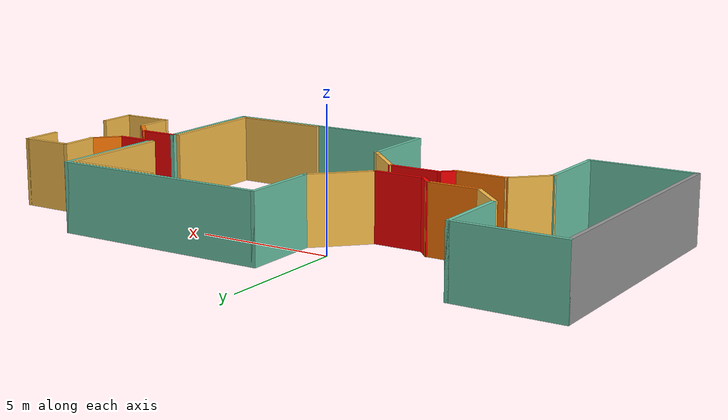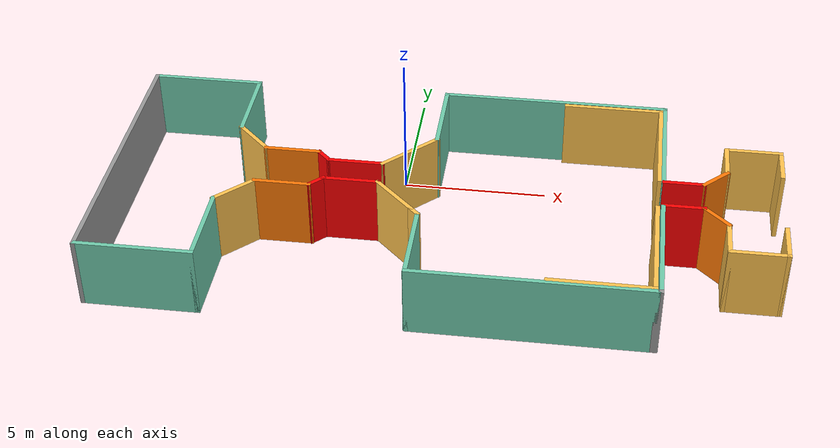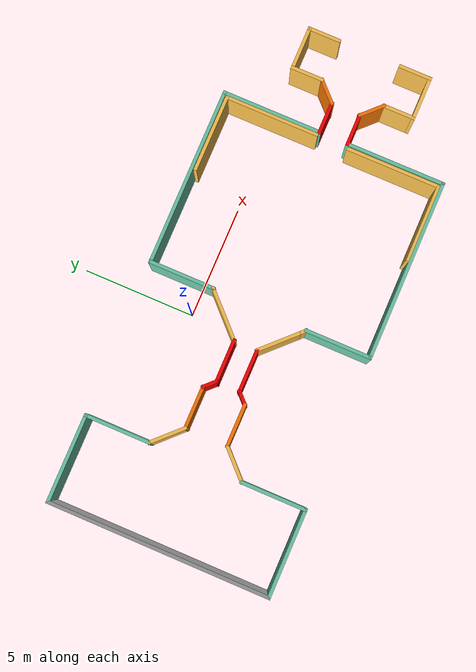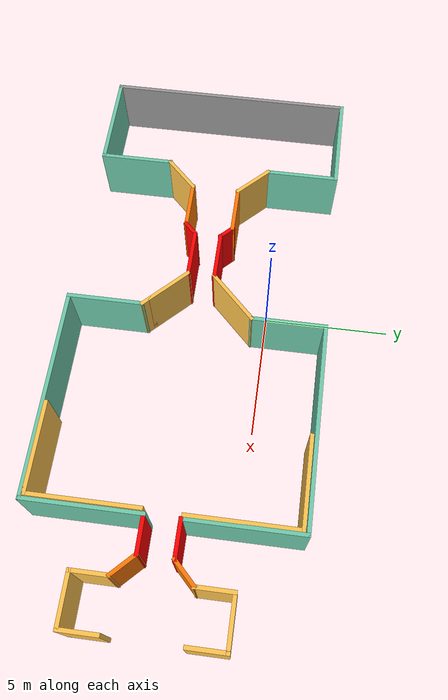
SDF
<?xml version='1.0'?>
<sdf version='1.6'>
  <model name='exp1.sdf'>
    <pose frame=''>1.73143 -2.6637 0 0 -0 0</pose>
    <link name='Wall_1'>
      <collision name='Wall_1_Collision'>
        <geometry>
          <box>
            <size>10 0.15 2.5</size>
          </box>
        </geometry>
        <pose frame=''>0 0 1.25 0 -0 0</pose>
      </collision>
      <visual name='Wall_1_Visual'>
        <pose frame=''>0 0 1.25 0 -0 0</pose>
        <geometry>
          <box>
            <size>10 0.15 2.5</size>
          </box>
        </geometry>
        <material>
          <script>
            <uri>file://media/materials/scripts/gazebo.material</uri>
            <name>Gazebo/Grey</name>
          </script>
          <ambient>1 1 1 1</ambient>
        </material>
        <meta>
          <layer>0</layer>
        </meta>
      </visual>
      <pose frame=''>-11.2976 -0.037824 0 0 0 -1.5708</pose>
    </link>
    <link name='Wall_10'>
      <collision name='Wall_10_Collision'>
        <geometry>
          <box>
            <size>3.03042 0.15 2.5</size>
          </box>
        </geometry>
        <pose frame=''>0 0 1.25 0 -0 0</pose>
      </collision>
      <visual name='Wall_10_Visual'>
        <pose frame=''>0 0 1.25 0 -0 0</pose>
        <geometry>
          <box>
            <size>3.03042 0.15 2.5</size>
          </box>
        </geometry>
        <material>
          <script>
            <uri>file://media/materials/scripts/gazebo.material</uri>
            <name>Gazebo/Grey</name>
          </script>
          <ambient>0.435294 0.796078 0.67451 1</ambient>
        </material>
        <meta>
          <layer>0</layer>
        </meta>
      </visual>
      <pose frame=''>-0.636307 -3.55303 0 0 0 -1.5708</pose>
    </link>
    <link name='Wall_12'>
      <collision name='Wall_12_Collision'>
        <geometry>
          <box>
            <size>4 0.15 2.5</size>
          </box>
        </geometry>
        <pose frame=''>0 0 1.25 0 -0 0</pose>
      </collision>
      <visual name='Wall_12_Visual'>
        <pose frame=''>0 0 1.25 0 -0 0</pose>
        <geometry>
          <box>
            <size>4 0.15 2.5</size>
          </box>
        </geometry>
        <material>
          <script>
            <uri>file://media/materials/scripts/gazebo.material</uri>
            <name>Gazebo/Grey</name>
          </script>
          <ambient>0.435294 0.796078 0.67451 1</ambient>
        </material>
        <meta>
          <layer>0</layer>
        </meta>
      </visual>
      <pose frame=''>-9.37258 4.88718 0 0 -0 0</pose>
    </link>
    <link name='Wall_13'>
      <collision name='Wall_13_Collision'>
        <geometry>
          <box>
            <size>3 0.15 2.5</size>
          </box>
        </geometry>
        <pose frame=''>0 0 1.25 0 -0 0</pose>
      </collision>
      <visual name='Wall_13_Visual'>
        <pose frame=''>0 0 1.25 0 -0 0</pose>
        <geometry>
          <box>
            <size>3 0.15 2.5</size>
          </box>
        </geometry>
        <material>
          <script>
            <uri>file://media/materials/scripts/gazebo.material</uri>
            <name>Gazebo/Grey</name>
          </script>
          <ambient>0.435294 0.796078 0.67451 1</ambient>
        </material>
        <meta>
          <layer>0</layer>
        </meta>
      </visual>
      <pose frame=''>-7.44758 3.46218 0 0 0 -1.5708</pose>
    </link>
    <link name='Wall_14'>
      <collision name='Wall_14_Collision'>
        <geometry>
          <box>
            <size>1.75 0.15 2.5</size>
          </box>
        </geometry>
        <pose frame=''>0 0 1.25 0 -0 0</pose>
      </collision>
      <visual name='Wall_14_Visual'>
        <pose frame=''>0 0 1.25 0 -0 0</pose>
        <geometry>
          <box>
            <size>1.75 0.15 2.5</size>
          </box>
        </geometry>
        <material>
          <script>
            <uri>file://media/materials/scripts/gazebo.material</uri>
            <name>Gazebo/Grey</name>
          </script>
          <ambient>1 0.764706 0.305882 1</ambient>
        </material>
        <meta>
          <layer>0</layer>
        </meta>
      </visual>
      <pose frame=''>-6.88189 1.47149 0 0 0 -0.785398</pose>
    </link>
    <link name='Wall_15'>
      <collision name='Wall_15_Collision'>
        <geometry>
          <box>
            <size>2 0.15 2.5</size>
          </box>
        </geometry>
        <pose frame=''>0 0 1.25 0 -0 0</pose>
      </collision>
      <visual name='Wall_15_Visual'>
        <pose frame=''>0 0 1.25 0 -0 0</pose>
        <geometry>
          <box>
            <size>2 0.15 2.5</size>
          </box>
        </geometry>
        <material>
          <script>
            <uri>file://media/materials/scripts/gazebo.material</uri>
            <name>Gazebo/Grey</name>
          </script>
          <ambient>0.996078 0.47451 0.0196078 1</ambient>
        </material>
        <meta>
          <layer>0</layer>
        </meta>
      </visual>
      <pose frame=''>-5.39121 0.905805 0 0 -0 0</pose>
    </link>
    <link name='Wall_16'>
      <collision name='Wall_16_Collision'>
        <geometry>
          <box>
            <size>0.75 0.15 2.5</size>
          </box>
        </geometry>
        <pose frame=''>0 0 1.25 0 -0 0</pose>
      </collision>
      <visual name='Wall_16_Visual'>
        <pose frame=''>0 0 1.25 0 -0 0</pose>
        <geometry>
          <box>
            <size>0.75 0.15 2.5</size>
          </box>
        </geometry>
        <material>
          <script>
            <uri>file://media/materials/scripts/gazebo.material</uri>
            <name>Gazebo/Grey</name>
          </script>
          <ambient>1 0 0 1</ambient>
        </material>
        <meta>
          <layer>0</layer>
        </meta>
      </visual>
      <pose frame=''>-4.25407 0.693673 0 0 0 -0.785398</pose>
    </link>
    <link name='Wall_17'>
      <collision name='Wall_17_Collision'>
        <geometry>
          <box>
            <size>2 0.15 2.5</size>
          </box>
        </geometry>
        <pose frame=''>0 0 1.25 0 -0 0</pose>
      </collision>
      <visual name='Wall_17_Visual'>
        <pose frame=''>0 0 1.25 0 -0 0</pose>
        <geometry>
          <box>
            <size>2 0.15 2.5</size>
          </box>
        </geometry>
        <material>
          <script>
            <uri>file://media/materials/scripts/gazebo.material</uri>
            <name>Gazebo/Grey</name>
          </script>
          <ambient>1 0 0 1</ambient>
        </material>
        <meta>
          <layer>0</layer>
        </meta>
      </visual>
      <pose frame=''>-3.11694 0.481541 0 0 -0 0</pose>
    </link>
    <link name='Wall_2'>
      <collision name='Wall_2_Collision'>
        <geometry>
          <box>
            <size>4 0.15 2.5</size>
          </box>
        </geometry>
        <pose frame=''>0 0 1.25 0 -0 0</pose>
      </collision>
      <visual name='Wall_2_Visual'>
        <pose frame=''>0 0 1.25 0 -0 0</pose>
        <geometry>
          <box>
            <size>4 0.15 2.5</size>
          </box>
        </geometry>
        <material>
          <script>
            <uri>file://media/materials/scripts/gazebo.material</uri>
            <name>Gazebo/Grey</name>
          </script>
          <ambient>0.435294 0.796078 0.67451 1</ambient>
        </material>
        <meta>
          <layer>0</layer>
        </meta>
      </visual>
      <pose frame=''>-9.37258 -4.96282 0 0 -0 0</pose>
    </link>
    <link name='Wall_20'>
      <collision name='Wall_20_Collision'>
        <geometry>
          <box>
            <size>2.5 0.15 2.5</size>
          </box>
        </geometry>
        <pose frame=''>0 0 1.25 0 -0 0</pose>
      </collision>
      <visual name='Wall_20_Visual'>
        <pose frame=''>0 0 1.25 0 -0 0</pose>
        <geometry>
          <box>
            <size>2.5 0.15 2.5</size>
          </box>
        </geometry>
        <material>
          <script>
            <uri>file://media/materials/scripts/gazebo.material</uri>
            <name>Gazebo/Grey</name>
          </script>
          <ambient>1 0.764706 0.305882 1</ambient>
        </material>
        <meta>
          <layer>0</layer>
        </meta>
      </visual>
      <pose frame=''>-1.36109 1.31239 0 0 -0 0.785398</pose>
    </link>
    <link name='Wall_21'>
      <collision name='Wall_21_Collision'>
        <geometry>
          <box>
            <size>3 0.15 2.5</size>
          </box>
        </geometry>
        <pose frame=''>0 0 1.25 0 -0 0</pose>
      </collision>
      <visual name='Wall_21_Visual'>
        <pose frame=''>0 0 1.25 0 -0 0</pose>
        <geometry>
          <box>
            <size>3 0.15 2.5</size>
          </box>
        </geometry>
        <material>
          <script>
            <uri>file://media/materials/scripts/gazebo.material</uri>
            <name>Gazebo/Grey</name>
          </script>
          <ambient>0.435294 0.796078 0.67451 1</ambient>
        </material>
        <meta>
          <layer>0</layer>
        </meta>
      </visual>
      <pose frame=''>-0.53024 3.56824 0 0 -0 1.5708</pose>
    </link>
    <link name='Wall_22'>
      <collision name='Wall_22_Collision'>
        <geometry>
          <box>
            <size>8 0.15 2.5</size>
          </box>
        </geometry>
        <pose frame=''>0 0 1.25 0 -0 0</pose>
      </collision>
      <visual name='Wall_22_Visual'>
        <pose frame=''>0 0 1.25 0 -0 0</pose>
        <geometry>
          <box>
            <size>8 0.15 2.5</size>
          </box>
        </geometry>
        <material>
          <script>
            <uri>file://media/materials/scripts/gazebo.material</uri>
            <name>Gazebo/Grey</name>
          </script>
          <ambient>0.435294 0.796078 0.67451 1</ambient>
        </material>
        <meta>
          <layer>0</layer>
        </meta>
      </visual>
      <pose frame=''>3.39476 4.99324 0 0 -0 0</pose>
    </link>
    <link name='Wall_23'>
      <collision name='Wall_23_Collision'>
        <geometry>
          <box>
            <size>4.5 0.15 2.5</size>
          </box>
        </geometry>
        <pose frame=''>0 0 1.25 0 -0 0</pose>
      </collision>
      <visual name='Wall_23_Visual'>
        <pose frame=''>0 0 1.25 0 -0 0</pose>
        <geometry>
          <box>
            <size>4.5 0.15 2.5</size>
          </box>
        </geometry>
        <material>
          <script>
            <uri>file://media/materials/scripts/gazebo.material</uri>
            <name>Gazebo/Grey</name>
          </script>
          <ambient>0.435294 0.796078 0.67451 1</ambient>
        </material>
        <meta>
          <layer>0</layer>
        </meta>
      </visual>
      <pose frame=''>7.31976 2.81824 0 0 0 -1.5708</pose>
    </link>
    <link name='Wall_24'>
      <collision name='Wall_24_Collision'>
        <geometry>
          <box>
            <size>1.5 0.15 2.5</size>
          </box>
        </geometry>
        <pose frame=''>0 0 1.25 0 -0 0</pose>
      </collision>
      <visual name='Wall_24_Visual'>
        <pose frame=''>0 0 1.25 0 -0 0</pose>
        <geometry>
          <box>
            <size>1.5 0.15 2.5</size>
          </box>
        </geometry>
        <material>
          <script>
            <uri>file://media/materials/scripts/gazebo.material</uri>
            <name>Gazebo/Grey</name>
          </script>
          <ambient>1 0 0 1</ambient>
        </material>
        <meta>
          <layer>0</layer>
        </meta>
      </visual>
      <pose frame=''>7.99476 0.643242 0 0 -0 0</pose>
    </link>
    <link name='Wall_25'>
      <collision name='Wall_25_Collision'>
        <geometry>
          <box>
            <size>1.25 0.15 2.5</size>
          </box>
        </geometry>
        <pose frame=''>0 0 1.25 0 -0 0</pose>
      </collision>
      <visual name='Wall_25_Visual'>
        <pose frame=''>0 0 1.25 0 -0 0</pose>
        <geometry>
          <box>
            <size>1.25 0.15 2.5</size>
          </box>
        </geometry>
        <material>
          <script>
            <uri>file://media/materials/scripts/gazebo.material</uri>
            <name>Gazebo/Grey</name>
          </script>
          <ambient>0.996078 0.47451 0.0196078 1</ambient>
        </material>
        <meta>
          <layer>0</layer>
        </meta>
      </visual>
      <pose frame=''>9.05867 1.03215 0 0 -0 0.785398</pose>
    </link>
    <link name='Wall_26'>
      <collision name='Wall_26_Collision'>
        <geometry>
          <box>
            <size>1.5 0.15 2.5</size>
          </box>
        </geometry>
        <pose frame=''>0 0 1.25 0 -0 0</pose>
      </collision>
      <visual name='Wall_26_Visual'>
        <pose frame=''>0 0 1.25 0 -0 0</pose>
        <geometry>
          <box>
            <size>1.5 0.15 2.5</size>
          </box>
        </geometry>
        <material>
          <script>
            <uri>file://media/materials/scripts/gazebo.material</uri>
            <name>Gazebo/Grey</name>
          </script>
          <ambient>1 0.764706 0.305882 1</ambient>
        </material>
        <meta>
          <layer>0</layer>
        </meta>
      </visual>
      <pose frame=''>9.44758 2.09606 0 0 -0 1.5708</pose>
    </link>
    <link name='Wall_27'>
      <collision name='Wall_27_Collision'>
        <geometry>
          <box>
            <size>2 0.15 2.5</size>
          </box>
        </geometry>
        <pose frame=''>0 0 1.25 0 -0 0</pose>
      </collision>
      <visual name='Wall_27_Visual'>
        <pose frame=''>0 0 1.25 0 -0 0</pose>
        <geometry>
          <box>
            <size>2 0.15 2.5</size>
          </box>
        </geometry>
        <material>
          <script>
            <uri>file://media/materials/scripts/gazebo.material</uri>
            <name>Gazebo/Grey</name>
          </script>
          <ambient>1 0.764706 0.305882 1</ambient>
        </material>
        <meta>
          <layer>0</layer>
        </meta>
      </visual>
      <pose frame=''>10.3726 2.77106 0 0 -0 0</pose>
    </link>
    <link name='Wall_3'>
      <collision name='Wall_3_Collision'>
        <geometry>
          <box>
            <size>3 0.15 2.5</size>
          </box>
        </geometry>
        <pose frame=''>0 0 1.25 0 -0 0</pose>
      </collision>
      <visual name='Wall_3_Visual'>
        <pose frame=''>0 0 1.25 0 -0 0</pose>
        <geometry>
          <box>
            <size>3 0.15 2.5</size>
          </box>
        </geometry>
        <material>
          <script>
            <uri>file://media/materials/scripts/gazebo.material</uri>
            <name>Gazebo/Grey</name>
          </script>
          <ambient>0.435294 0.796078 0.67451 1</ambient>
        </material>
        <meta>
          <layer>0</layer>
        </meta>
      </visual>
      <pose frame=''>-7.44758 -3.53782 0 0 -0 1.5708</pose>
    </link>
    <link name='Wall_4'>
      <collision name='Wall_4_Collision'>
        <geometry>
          <box>
            <size>1.75 0.15 2.5</size>
          </box>
        </geometry>
        <pose frame=''>0 0 1.25 0 -0 0</pose>
      </collision>
      <visual name='Wall_4_Visual'>
        <pose frame=''>0 0 1.25 0 -0 0</pose>
        <geometry>
          <box>
            <size>1.75 0.15 2.5</size>
          </box>
        </geometry>
        <material>
          <script>
            <uri>file://media/materials/scripts/gazebo.material</uri>
            <name>Gazebo/Grey</name>
          </script>
          <ambient>1 0.764706 0.305882 1</ambient>
        </material>
        <meta>
          <layer>0</layer>
        </meta>
      </visual>
      <pose frame=''>-6.88189 -1.54714 0 0 -0 0.785398</pose>
    </link>
    <link name='Wall_41'>
      <collision name='Wall_41_Collision'>
        <geometry>
          <box>
            <size>8 0.15 2.5</size>
          </box>
        </geometry>
        <pose frame=''>0 0 1.25 0 -0 0</pose>
      </collision>
      <visual name='Wall_41_Visual'>
        <pose frame=''>0 0 1.25 0 -0 0</pose>
        <geometry>
          <box>
            <size>8 0.15 2.5</size>
          </box>
        </geometry>
        <material>
          <script>
            <uri>file://media/materials/scripts/gazebo.material</uri>
            <name>Gazebo/Grey</name>
          </script>
          <ambient>0.435294 0.796078 0.67451 1</ambient>
        </material>
        <meta>
          <layer>0</layer>
        </meta>
      </visual>
      <pose frame=''>3.28869 -4.99324 0 0 -0 0</pose>
    </link>
    <link name='Wall_42'>
      <collision name='Wall_42_Collision'>
        <geometry>
          <box>
            <size>0.25 0.15 2.5</size>
          </box>
        </geometry>
        <pose frame=''>0 0 1.25 0 -0 0</pose>
      </collision>
      <visual name='Wall_42_Visual'>
        <pose frame=''>0 0 1.25 0 -0 0</pose>
        <geometry>
          <box>
            <size>0.25 0.15 2.5</size>
          </box>
        </geometry>
        <material>
          <script>
            <uri>file://media/materials/scripts/gazebo.material</uri>
            <name>Gazebo/Grey</name>
          </script>
          <ambient>1 1 1 1</ambient>
        </material>
        <meta>
          <layer>0</layer>
        </meta>
      </visual>
      <pose frame=''>7.26369 -4.99324 0 0 -0 0</pose>
    </link>
    <link name='Wall_43'>
      <collision name='Wall_43_Collision'>
        <geometry>
          <box>
            <size>4.5 0.15 2.5</size>
          </box>
        </geometry>
        <pose frame=''>0 0 1.25 0 -0 0</pose>
      </collision>
      <visual name='Wall_43_Visual'>
        <pose frame=''>0 0 1.25 0 -0 0</pose>
        <geometry>
          <box>
            <size>4.5 0.15 2.5</size>
          </box>
        </geometry>
        <material>
          <script>
            <uri>file://media/materials/scripts/gazebo.material</uri>
            <name>Gazebo/Grey</name>
          </script>
          <ambient>0.435294 0.796078 0.67451 1</ambient>
        </material>
        <meta>
          <layer>0</layer>
        </meta>
      </visual>
      <pose frame=''>7.31369 -2.81824 0 0 -0 1.5708</pose>
    </link>
    <link name='Wall_44'>
      <collision name='Wall_44_Collision'>
        <geometry>
          <box>
            <size>1.5 0.15 2.5</size>
          </box>
        </geometry>
        <pose frame=''>0 0 1.25 0 -0 0</pose>
      </collision>
      <visual name='Wall_44_Visual'>
        <pose frame=''>0 0 1.25 0 -0 0</pose>
        <geometry>
          <box>
            <size>1.5 0.15 2.5</size>
          </box>
        </geometry>
        <material>
          <script>
            <uri>file://media/materials/scripts/gazebo.material</uri>
            <name>Gazebo/Grey</name>
          </script>
          <ambient>1 0 0 1</ambient>
        </material>
        <meta>
          <layer>0</layer>
        </meta>
      </visual>
      <pose frame=''>7.98869 -0.643242 0 0 -0 0</pose>
    </link>
    <link name='Wall_47'>
      <collision name='Wall_47_Collision'>
        <geometry>
          <box>
            <size>1.25 0.15 2.5</size>
          </box>
        </geometry>
        <pose frame=''>0 0 1.25 0 -0 0</pose>
      </collision>
      <visual name='Wall_47_Visual'>
        <pose frame=''>0 0 1.25 0 -0 0</pose>
        <geometry>
          <box>
            <size>1.25 0.15 2.5</size>
          </box>
        </geometry>
        <material>
          <script>
            <uri>file://media/materials/scripts/gazebo.material</uri>
            <name>Gazebo/Grey</name>
          </script>
          <ambient>0.996078 0.47451 0.0196078 1</ambient>
        </material>
        <meta>
          <layer>0</layer>
        </meta>
      </visual>
      <pose frame=''>9.0526 -1.03215 0 0 0 -0.785398</pose>
    </link>
    <link name='Wall_5'>
      <collision name='Wall_5_Collision'>
        <geometry>
          <box>
            <size>2 0.15 2.5</size>
          </box>
        </geometry>
        <pose frame=''>0 0 1.25 0 -0 0</pose>
      </collision>
      <visual name='Wall_5_Visual'>
        <pose frame=''>0 0 1.25 0 -0 0</pose>
        <geometry>
          <box>
            <size>2 0.15 2.5</size>
          </box>
        </geometry>
        <material>
          <script>
            <uri>file://media/materials/scripts/gazebo.material</uri>
            <name>Gazebo/Grey</name>
          </script>
          <ambient>0.996078 0.47451 0.0196078 1</ambient>
        </material>
        <meta>
          <layer>0</layer>
        </meta>
      </visual>
      <pose frame=''>-5.39121 -0.981453 0 0 -0 0</pose>
    </link>
    <link name='Wall_56'>
      <collision name='Wall_56_Collision'>
        <geometry>
          <box>
            <size>1.5 0.15 2.5</size>
          </box>
        </geometry>
        <pose frame=''>0 0 1.25 0 -0 0</pose>
      </collision>
      <visual name='Wall_56_Visual'>
        <pose frame=''>0 0 1.25 0 -0 0</pose>
        <geometry>
          <box>
            <size>1.5 0.15 2.5</size>
          </box>
        </geometry>
        <material>
          <script>
            <uri>file://media/materials/scripts/gazebo.material</uri>
            <name>Gazebo/Grey</name>
          </script>
          <ambient>1 0.764706 0.305882 1</ambient>
        </material>
        <meta>
          <layer>0</layer>
        </meta>
      </visual>
      <pose frame=''>11.2976 2.09606 0 0 0 -1.5708</pose>
    </link>
    <link name='Wall_58'>
      <collision name='Wall_58_Collision'>
        <geometry>
          <box>
            <size>1.5 0.15 2.5</size>
          </box>
        </geometry>
        <pose frame=''>0 0 1.25 0 -0 0</pose>
      </collision>
      <visual name='Wall_58_Visual'>
        <pose frame=''>0 0 1.25 0 -0 0</pose>
        <geometry>
          <box>
            <size>1.5 0.15 2.5</size>
          </box>
        </geometry>
        <material>
          <script>
            <uri>file://media/materials/scripts/gazebo.material</uri>
            <name>Gazebo/Grey</name>
          </script>
          <ambient>1 0.764706 0.305882 1</ambient>
        </material>
        <meta>
          <layer>0</layer>
        </meta>
      </visual>
      <pose frame=''>9.44151 -2.09606 0 0 0 -1.5708</pose>
    </link>
    <link name='Wall_59'>
      <collision name='Wall_59_Collision'>
        <geometry>
          <box>
            <size>2 0.15 2.5</size>
          </box>
        </geometry>
        <pose frame=''>0 0 1.25 0 -0 0</pose>
      </collision>
      <visual name='Wall_59_Visual'>
        <pose frame=''>0 0 1.25 0 -0 0</pose>
        <geometry>
          <box>
            <size>2 0.15 2.5</size>
          </box>
        </geometry>
        <material>
          <script>
            <uri>file://media/materials/scripts/gazebo.material</uri>
            <name>Gazebo/Grey</name>
          </script>
          <ambient>1 0.764706 0.305882 1</ambient>
        </material>
        <meta>
          <layer>0</layer>
        </meta>
      </visual>
      <pose frame=''>10.3665 -2.77106 0 0 -0 0</pose>
    </link>
    <link name='Wall_6'>
      <collision name='Wall_6_Collision'>
        <geometry>
          <box>
            <size>0.75 0.15 2.5</size>
          </box>
        </geometry>
        <pose frame=''>0 0 1.25 0 -0 0</pose>
      </collision>
      <visual name='Wall_6_Visual'>
        <pose frame=''>0 0 1.25 0 -0 0</pose>
        <geometry>
          <box>
            <size>0.75 0.15 2.5</size>
          </box>
        </geometry>
        <material>
          <script>
            <uri>file://media/materials/scripts/gazebo.material</uri>
            <name>Gazebo/Grey</name>
          </script>
          <ambient>1 0 0 1</ambient>
        </material>
        <meta>
          <layer>0</layer>
        </meta>
      </visual>
      <pose frame=''>-4.25407 -0.769321 0 0 -0 0.785398</pose>
    </link>
    <link name='Wall_60'>
      <collision name='Wall_60_Collision'>
        <geometry>
          <box>
            <size>1.5 0.15 2.5</size>
          </box>
        </geometry>
        <pose frame=''>0 0 1.25 0 -0 0</pose>
      </collision>
      <visual name='Wall_60_Visual'>
        <pose frame=''>0 0 1.25 0 -0 0</pose>
        <geometry>
          <box>
            <size>1.5 0.15 2.5</size>
          </box>
        </geometry>
        <material>
          <script>
            <uri>file://media/materials/scripts/gazebo.material</uri>
            <name>Gazebo/Grey</name>
          </script>
          <ambient>1 0.764706 0.305882 1</ambient>
        </material>
        <meta>
          <layer>0</layer>
        </meta>
      </visual>
      <pose frame=''>11.2915 -2.09606 0 0 -0 1.5708</pose>
    </link>
    <link name='Wall_62'>
      <collision name='Wall_62_Collision'>
        <geometry>
          <box>
            <size>3.5 0.15 2.5</size>
          </box>
        </geometry>
        <pose frame=''>0 0 1.25 0 -0 0</pose>
      </collision>
      <visual name='Wall_62_Visual'>
        <pose frame=''>0 0 1.25 0 -0 0</pose>
        <geometry>
          <box>
            <size>3.5 0.15 2.5</size>
          </box>
        </geometry>
        <material>
          <script>
            <uri>file://media/materials/scripts/gazebo.material</uri>
            <name>Gazebo/Grey</name>
          </script>
          <ambient>1 0.764706 0.305882 1</ambient>
        </material>
        <meta>
          <layer>0</layer>
        </meta>
      </visual>
      <pose frame=''>5.50551 4.82319 0 0 -0 0</pose>
    </link>
    <link name='Wall_63'>
      <collision name='Wall_63_Collision'>
        <geometry>
          <box>
            <size>4.25 0.15 2.5</size>
          </box>
        </geometry>
        <pose frame=''>0 0 1.25 0 -0 0</pose>
      </collision>
      <visual name='Wall_63_Visual'>
        <pose frame=''>0 0 1.25 0 -0 0</pose>
        <geometry>
          <box>
            <size>4.25 0.15 2.5</size>
          </box>
        </geometry>
        <material>
          <script>
            <uri>file://media/materials/scripts/gazebo.material</uri>
            <name>Gazebo/Grey</name>
          </script>
          <ambient>1 0.764706 0.305882 1</ambient>
        </material>
        <meta>
          <layer>0</layer>
        </meta>
      </visual>
      <pose frame=''>7.18051 2.77319 0 0 0 -1.5708</pose>
    </link>
    <link name='Wall_65'>
      <collision name='Wall_65_Collision'>
        <geometry>
          <box>
            <size>3.5 0.15 2.5</size>
          </box>
        </geometry>
        <pose frame=''>0 0 1.25 0 -0 0</pose>
      </collision>
      <visual name='Wall_65_Visual'>
        <pose frame=''>0 0 1.25 0 -0 0</pose>
        <geometry>
          <box>
            <size>3.5 0.15 2.5</size>
          </box>
        </geometry>
        <material>
          <script>
            <uri>file://media/materials/scripts/gazebo.material</uri>
            <name>Gazebo/Grey</name>
          </script>
          <ambient>1 0.764706 0.305882 1</ambient>
        </material>
        <meta>
          <layer>0</layer>
        </meta>
      </visual>
      <pose frame=''>5.45925 -4.86854 0 0 -0 0</pose>
    </link>
    <link name='Wall_66'>
      <collision name='Wall_66_Collision'>
        <geometry>
          <box>
            <size>4.25 0.15 2.5</size>
          </box>
        </geometry>
        <pose frame=''>0 0 1.25 0 -0 0</pose>
      </collision>
      <visual name='Wall_66_Visual'>
        <pose frame=''>0 0 1.25 0 -0 0</pose>
        <geometry>
          <box>
            <size>4.25 0.15 2.5</size>
          </box>
        </geometry>
        <material>
          <script>
            <uri>file://media/materials/scripts/gazebo.material</uri>
            <name>Gazebo/Grey</name>
          </script>
          <ambient>1 0.764706 0.305882 1</ambient>
        </material>
        <meta>
          <layer>0</layer>
        </meta>
      </visual>
      <pose frame=''>7.13425 -2.81854 0 0 -0 1.5708</pose>
    </link>
    <link name='Wall_7'>
      <collision name='Wall_7_Collision'>
        <geometry>
          <box>
            <size>2 0.15 2.5</size>
          </box>
        </geometry>
        <pose frame=''>0 0 1.25 0 -0 0</pose>
      </collision>
      <visual name='Wall_7_Visual'>
        <pose frame=''>0 0 1.25 0 -0 0</pose>
        <geometry>
          <box>
            <size>2 0.15 2.5</size>
          </box>
        </geometry>
        <material>
          <script>
            <uri>file://media/materials/scripts/gazebo.material</uri>
            <name>Gazebo/Grey</name>
          </script>
          <ambient>1 0 0 1</ambient>
        </material>
        <meta>
          <layer>0</layer>
        </meta>
      </visual>
      <pose frame=''>-3.11694 -0.557189 0 0 -0 0</pose>
    </link>
    <link name='Wall_8'>
      <collision name='Wall_8_Collision'>
        <geometry>
          <box>
            <size>2 0.15 2.5</size>
          </box>
        </geometry>
        <pose frame=''>0 0 1.25 0 -0 0</pose>
      </collision>
      <visual name='Wall_8_Visual'>
        <pose frame=''>0 0 1.25 0 -0 0</pose>
        <geometry>
          <box>
            <size>2 0.15 2.5</size>
          </box>
        </geometry>
        <material>
          <script>
            <uri>file://media/materials/scripts/gazebo.material</uri>
            <name>Gazebo/Grey</name>
          </script>
          <ambient>1 0.764706 0.305882 1</ambient>
        </material>
        <meta>
          <layer>0</layer>
        </meta>
      </visual>
      <pose frame=''>-1.53787 -1.21126 0 0 0 -0.785398</pose>
    </link>
    <link name='Wall_9'>
      <collision name='Wall_9_Collision'>
        <geometry>
          <box>
            <size>0.5 0.15 2.5</size>
          </box>
        </geometry>
        <pose frame=''>0 0 1.25 0 -0 0</pose>
      </collision>
      <visual name='Wall_9_Visual'>
        <pose frame=''>0 0 1.25 0 -0 0</pose>
        <geometry>
          <box>
            <size>0.5 0.15 2.5</size>
          </box>
        </geometry>
        <material>
          <script>
            <uri>file://media/materials/scripts/gazebo.material</uri>
            <name>Gazebo/Grey</name>
          </script>
          <ambient>1 0.764706 0.305882 1</ambient>
        </material>
        <meta>
          <layer>0</layer>
        </meta>
      </visual>
      <pose frame=''>-0.76005 -1.98908 0 0 0 -0.785398</pose>
    </link>
    <static>1</static>
  </model>
</sdf>
